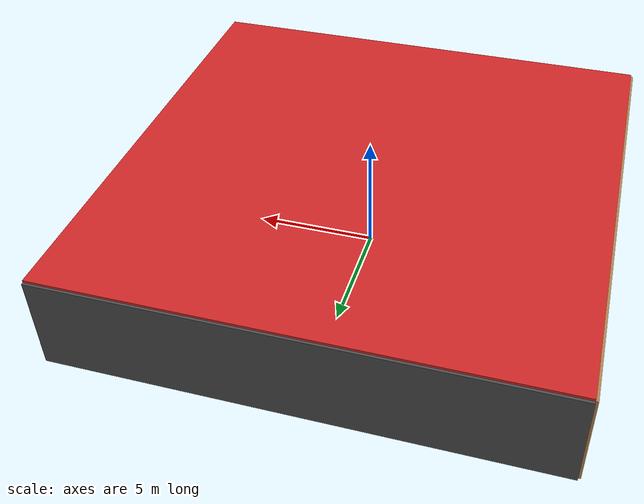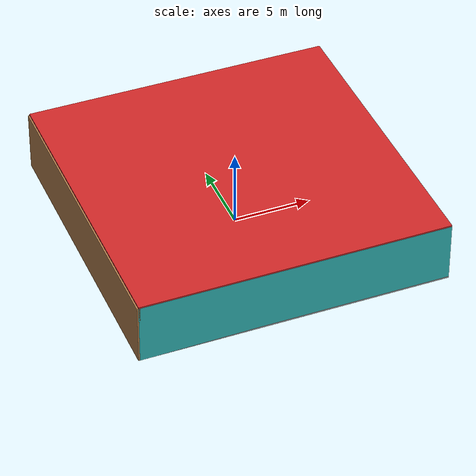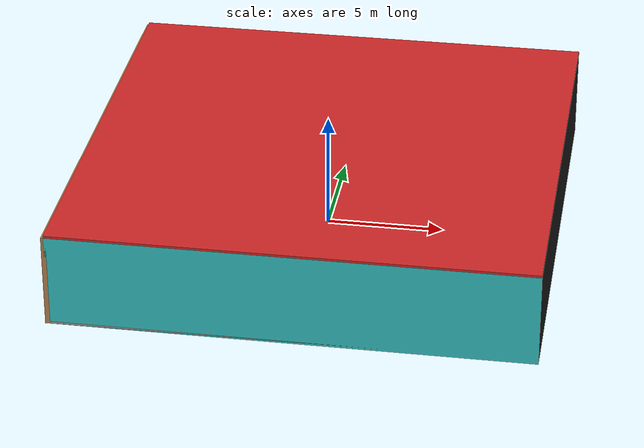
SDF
<sdf version="1.4">
 <world name="default">
  <physics type="ode">
   <max_step_size>0.001</max_step_size>
   <real_time_factor>1</real_time_factor>
   <real_time_update_rate>1000</real_time_update_rate>
   <gravity>0 0 -9.8</gravity>
  </physics>
  <scene><ambient>0.4 0.4 0.4 1</ambient><background>0.7 0.7 0.7 1</background><shadows>1</shadows></scene>
  <model name="Surrounding">
   <static>1</static>
   <link name="Ceiling">
    <collision name="Ceiling_Collision"><geometry><box><size>20 20 0.1</size></box></geometry></collision>
    <visual name="Ceiling_Visual">
     <geometry><box><size>20 20 0.1</size></box></geometry>
     <material>
      <script><uri>file://media/materials/scripts/gazebo.material</uri><name>Gazebo/Red</name></script>
     </material>
    </visual>
    <pose>0 0 4.05 0 0 0</pose>
   </link>
   <link name="Wall_South">
    <collision name="Wall_South_Collision">
     <geometry><box><size>20 0 4</size></box></geometry>
     <pose>0 0 2 0 -0 0</pose>
    </collision>
    <visual name="Wall_South_Visual">
     <pose>0 0 2 0 -0 0</pose>
     <geometry><box><size>20 0 4</size></box></geometry>
     <material>
      <script><uri>file://media/materials/scripts/gazebo.material</uri><name>Gazebo/TurquoiseGlow</name></script>
     </material>
    </visual>
    <velocity_decay><linear>0</linear><angular>0</angular></velocity_decay>
    <pose>0 -10 0 0 -0 0</pose>
   </link>
   <link name="Wall_East">
    <collision name="Wall_21_Collision">
     <geometry><box><size>20 0 4</size></box></geometry>
     <pose>0 0 2 0 -0 0</pose>
    </collision>
    <visual name="Wall_21_Visual">
     <pose>0 0 2 0 -0 0</pose>
     <geometry><box><size>20 0 4</size></box></geometry>
     <material>
      <script><uri>file://media/materials/scripts/gazebo.material</uri><name>Gazebo/FlatBlack</name></script>
     </material>
    </visual>
    <velocity_decay><linear>0</linear><angular>0</angular></velocity_decay>
    <pose>10 0 0 0 -0 1.5708</pose>
   </link>
   <link name="Wall_North">
    <collision name="Wall_22_Collision">
     <geometry><box><size>20 0.2 4</size></box></geometry>
     <pose>0 0 2 0 -0 0</pose>
    </collision>
    <visual name="Wall_22_Visual">
     <pose>0 0 2 0 -0 0</pose>
     <geometry><box><size>20 0.2 4</size></box></geometry>
     <material>
      <script><uri>file://media/materials/scripts/gazebo.material</uri><name>Gazebo/DarkGrey</name></script>
     </material>
    </visual>
    <velocity_decay><linear>0</linear><angular>0</angular></velocity_decay>
    <pose>0 10 0 0 -0 0</pose>
   </link>
   <link name="Wall_West">
    <collision name="Wall_23_Collision">
     <geometry><box><size>20 0.2 4</size></box></geometry>
     <pose>0 0 2 0 -0 0</pose>
    </collision>
    <visual name="Wall_23_Visual">
     <pose>0 0 2 0 -0 0</pose>
     <geometry><box><size>20 0.2 4</size></box></geometry>
     <material>
      <script><uri>file://media/materials/scripts/gazebo.material</uri><name>Gazebo/Wood</name></script>
     </material>
    </visual>
    <velocity_decay><linear>0</linear><angular>0</angular></velocity_decay>
    <pose>-10 0 0 0 0 -1.5708</pose>
   </link>
   <link name="Ground_link">
    <collision name="collision">
     <pose>0 0 .05 0 -0 0</pose>
     <geometry><box><size>20 20 0.1</size></box></geometry>
    </collision>
    <visual name="visual">
     <pose>0 0 .05 0 -0 0</pose>
     <geometry><box><size>20 20 0.1</size></box></geometry>
     <material>
      <script><uri>file://media/materials/scripts/gazebo.material</uri><name>Gazebo/GreyGradientSky</name></script>
     </material>
    </visual>
   </link>
   <static>1</static>
  </model>
  <spherical_coordinates>
   <surface_model>EARTH_WGS84</surface_model>
   <latitude_deg>0</latitude_deg>
   <longitude_deg>0</longitude_deg>
   <elevation>0</elevation>
   <heading_deg>0</heading_deg>
  </spherical_coordinates>
  <light name="lightball_0" type="diffuse">
   <diffuse>0.8 0.8 0.8 1</diffuse>
   <specular>0.2 0.2 0.2 1</specular>
   <attenuation>
    <range>100</range>
    <constant>0.7</constant>
    <linear>0.01</linear>
    <quadratic>0.001</quadratic>
   </attenuation>
   <direction>-0.5 0.1 -0.9</direction>
   <pose>-4.01138531185 3.36255223908 1.84901055099 0 0 0</pose>
  </light>
  <light name="lightball_1" type="diffuse">
   <diffuse>0.8 0.8 0.8 1</diffuse>
   <specular>0.2 0.2 0.2 1</specular>
   <attenuation>
    <range>100</range>
    <constant>0.7</constant>
    <linear>0.01</linear>
    <quadratic>0.001</quadratic>
   </attenuation>
   <direction>-0.5 0.1 -0.9</direction>
   <pose>2.09494229532 0.985284123189 3.47721850834 0 0 0</pose>
  </light>
  <light name="lightball_2" type="diffuse">
   <diffuse>0.8 0.8 0.8 1</diffuse>
   <specular>0.2 0.2 0.2 1</specular>
   <attenuation>
    <range>100</range>
    <constant>0.7</constant>
    <linear>0.01</linear>
    <quadratic>0.001</quadratic>
   </attenuation>
   <direction>-0.5 0.1 -0.9</direction>
   <pose>8.01237541149 2.43384975934 0.563242892577 0 0 0</pose>
  </light>
  <light name="lightball_3" type="diffuse">
   <diffuse>0.8 0.8 0.8 1</diffuse>
   <specular>0.2 0.2 0.2 1</specular>
   <attenuation>
    <range>100</range>
    <constant>0.7</constant>
    <linear>0.01</linear>
    <quadratic>0.001</quadratic>
   </attenuation>
   <direction>-0.5 0.1 -0.9</direction>
   <pose>-1.39352647177 -8.72952147553 2.16219697763 0 0 0</pose>
  </light>
  <light name="lightball_4" type="diffuse">
   <diffuse>0.8 0.8 0.8 1</diffuse>
   <specular>0.2 0.2 0.2 1</specular>
   <attenuation>
    <range>100</range>
    <constant>0.7</constant>
    <linear>0.01</linear>
    <quadratic>0.001</quadratic>
   </attenuation>
   <direction>-0.5 0.1 -0.9</direction>
   <pose>9.2786599208 -9.35433178726 1.0863809212 0 0 0</pose>
  </light>
  <light name="lightball_5" type="diffuse">
   <diffuse>0.8 0.8 0.8 1</diffuse>
   <specular>0.2 0.2 0.2 1</specular>
   <attenuation>
    <range>100</range>
    <constant>0.7</constant>
    <linear>0.01</linear>
    <quadratic>0.001</quadratic>
   </attenuation>
   <direction>-0.5 0.1 -0.9</direction>
   <pose>9.95844546989 -2.55397277302 1.909781695 0 0 0</pose>
  </light>
  <include>
   <uri>model://textured_shapes</uri>
   <pose>-0.496388963935 -7.10022615266 0 0 0 1.81403555331</pose>
  </include>
  <include><uri>model://cabinet</uri><pose>1.94664929768 7.58648587043 0 0 0 2.06575728805</pose></include>
 </world>
</sdf>

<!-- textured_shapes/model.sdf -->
<sdf version="1.6">
  <model name="textured_shapes">
    <pose>0 0 0.5 0 0 0</pose>
    <link name="box">
      <pose>0 -1.5 0 0 0 0</pose>
      <collision name="collision">
        <geometry>
          <box>
            <size>1 1 1</size>
          </box>
        </geometry>
      </collision>
      <visual name="visual">
        <geometry>
          <box>
            <size>1 1 1</size>
          </box>
        </geometry>
        <material>
          <script>
            <uri>model://../model_source/models/textured_shapes/materials/scripts</uri>
            <uri>model://../model_source/models/textured_shapes/materials/textures</uri>
            <name>TexturedShape/Squares</name>
          </script>
        </material>
      </visual>
    </link>
    <link name="sphere">
      <collision name="collision">
        <geometry>
          <sphere>
            <radius>0.5</radius>
          </sphere>
        </geometry>
      </collision>
      <visual name="visual">
        <geometry>
          <sphere>
            <radius>0.5</radius>
          </sphere>
        </geometry>
        <material>
          <script>
            <uri>model://../model_source/models/textured_shapes/materials/scripts</uri>
            <uri>model://../model_source/models/textured_shapes/materials/textures</uri>
            <name>TexturedShape/Squares</name>
          </script>
        </material>
      </visual>
    </link>
    <link name="cylinder">
      <pose>0 1.5 0 0 0 0</pose>
      <collision name="collision">
        <geometry>
          <cylinder>
            <radius>0.5</radius>
            <length>1</length>
          </cylinder>
        </geometry>
      </collision>
      <visual name="visual">
        <geometry>
          <cylinder>
            <radius>0.5</radius>
            <length>1</length>
          </cylinder>
        </geometry>
        <material>
          <script>
            <uri>model://../model_source/models/textured_shapes/materials/scripts</uri>
            <uri>model://../model_source/models/textured_shapes/materials/textures</uri>
            <name>TexturedShape/Squares</name>
          </script>
        </material>
      </visual>
    </link>
  </model>
</sdf>

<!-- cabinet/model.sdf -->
<sdf version="1.5">
  <model name="cabinet">
    <static>true</static>
    <link name="cabinet_bottom_plate">
      <inertial>
        <pose>0 0 -1 0 0 0</pose>
        <inertia>
          <ixx>2.050000</ixx>
          <ixy>0</ixy>
          <ixz>0</ixz>
          <iyy>2.050000</iyy>
          <iyz>0</iyz>
          <izz>2.050000</izz>
        </inertia>
        <mass>25.000000</mass>
      </inertial>
      <collision name="cabinet_bottom_plate_geom">
        <pose>0 0 0.010000 0 0 0</pose>
        <geometry>
          <box>
            <size>0.450000 0.450000 0.020000</size>
          </box>
        </geometry>
      </collision>
      <visual name="cabinet_bottom_plate_geom_visual">
        <pose>0 0 0.010000 0 0 0</pose>
        <geometry>
          <box>
            <size>0.450000 0.450000 0.020000</size>
          </box>
        </geometry>
        <material>
          <script>
            <uri>model://media/materials/scripts/gazebo.material</uri>
            <name>Gazebo/Wood</name>
          </script>
        </material>
      </visual>
      <collision name="cabinet_bottom_plate_geom_cabinet_back_plate">
        <pose>0.235000 0 0.510000 0 0 0</pose>
        <geometry>
          <box>
            <size>0.020000 0.450000 1.020000</size>
          </box>
        </geometry>
      </collision>
      <visual name="cabinet_bottom_plate_geom_cabinet_back_plate_visual">
        <pose>0.235000 0 0.510000 0 0 0</pose>
        <geometry>
          <box>
            <size>0.020000 0.450000 1.020000</size>
          </box>
        </geometry>
        <material>
          <script>
            <uri>model://media/materials/scripts/gazebo.material</uri>
            <name>Gazebo/Wood</name>
          </script>
        </material>
      </visual>
      <collision name="cabinet_bottom_plate_geom_cabinet_left_plate">
        <pose>0 0.235000 0.510000 0 0 0</pose>
        <geometry>
          <box>
            <size>0.450000 0.020000 1.020000</size>
          </box>
        </geometry>
      </collision>
      <visual name="cabinet_bottom_plate_geom_cabinet_left_plate_visual">
        <pose>0 0.235000 0.510000 0 0 0</pose>
        <geometry>
          <box>
            <size>0.450000 0.020000 1.020000</size>
          </box>
        </geometry>
        <material>
          <script>
            <uri>model://media/materials/scripts/gazebo.material</uri>
            <name>Gazebo/Wood</name>
          </script>
        </material>
      </visual>
      <collision name="cabinet_bottom_plate_geom_cabinet_middle_plate">
        <pose>0 0 0.510000 0 0 0</pose>
        <geometry>
          <box>
            <size>0.450000 0.450000 0.020000</size>
          </box>
        </geometry>
      </collision>
      <visual name="cabinet_bottom_plate_geom_cabinet_middle_plate_visual">
        <pose>0 0 0.510000 0 0 0</pose>
        <geometry>
          <box>
            <size>0.450000 0.450000 0.020000</size>
          </box>
        </geometry>
        <material>
          <script>
            <uri>model://media/materials/scripts/gazebo.material</uri>
            <name>Gazebo/Wood</name>
          </script>
        </material>
      </visual>
      <collision name="cabinet_bottom_plate_geom_cabinet_right_plate">
        <pose>0 -0.235000 0.510000 0 0 0</pose>
        <geometry>
          <box>
            <size>0.450000 0.020000 1.020000</size>
          </box>
        </geometry>
      </collision>
      <visual name="cabinet_bottom_plate_geom_cabinet_right_plate_visual">
        <pose>0 -0.235000 0.510000 0 0 0</pose>
        <geometry>
          <box>
            <size>0.450000 0.020000 1.020000</size>
          </box>
        </geometry>
        <material>
          <script>
            <uri>model://media/materials/scripts/gazebo.material</uri>
            <name>Gazebo/Wood</name>
          </script>
        </material>
      </visual>
      <collision name="cabinet_bottom_plate_geom_cabinet_top_plate">
        <pose>0 0 1.010000 0 0 0</pose>
        <geometry>
          <box>
            <size>0.450000 0.450000 0.020000</size>
          </box>
        </geometry>
      </collision>
      <visual name="cabinet_bottom_plate_geom_cabinet_top_plate_visual">
        <pose>0 0 1.010000 0 0 0</pose>
        <geometry>
          <box>
            <size>0.450000 0.450000 0.020000</size>
          </box>
        </geometry>
        <material>
          <script>
            <uri>model://media/materials/scripts/gazebo.material</uri>
            <name>Gazebo/Wood</name>
          </script>
        </material>
      </visual>
    </link>
  </model>
</sdf>
